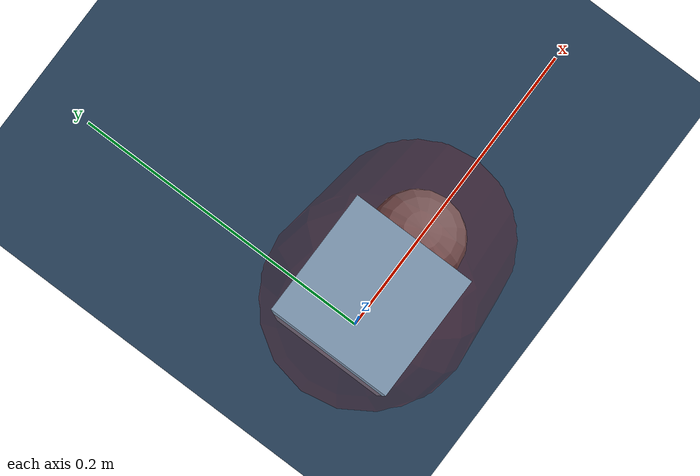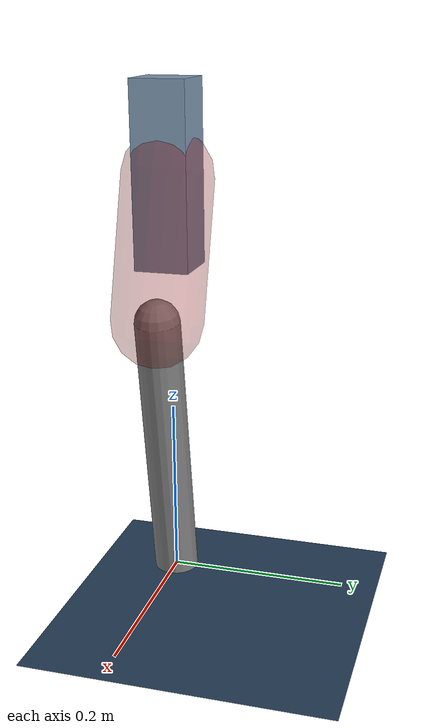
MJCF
<mujoco model="Hopper2D">
	<compiler inertiafromgeom="true" angle="radian" />
	<option timestep="0.001" integrator="implicit" cone="elliptic" solver="Newton" tolerance="1e-10" />

	<default>
		<geom contype="1" conaffinity="1" condim="3" friction="2 0.005 0.0001" solref="0.005 1" />
		<joint limited="true" damping="0.1" />
	</default>

	<asset>
		<texture name="skybox" type="skybox" builtin="gradient" rgb1=".4 .6 .8" rgb2="0 0 0" width="800" height="800" />
		<texture name="grid" type="2d" builtin="checker" rgb1=".1 .2 .3" rgb2=".2 .3 .4" width="300" height="300" mark="edge" markrgb=".2 .3 .4" />
		<material name="ground" texture="grid" texrepeat="1 1" texuniform="true" reflectance="0.1" />
		<material name="leg" rgba="0.5 0.6 0.7 1" />
	</asset>

	<worldbody>

		<geom name="floor" type="plane" size="5 5 0.25" material="ground" />

		<light directional="false" diffuse="0.8 0.8 0.8" specular="0.3 0.3 0.3" pos="0 0 2" dir="0 0 -1" />
		<light mode="targetbodycom" target="base" directional="false" diffuse="0.8 0.8 0.8" specular="0.3 0.3 0.3" pos="0 0 2" dir="0 0 -1" />

		<camera name="fixed" pos="0 -2 1" xyaxes="1 0 0 0 0 1" />
		<camera name="tracking" mode="trackcom" pos="0 -3 1" />

		<body name="root" pos="0 0 0.463946543795397">
			<joint name="slide_x" type="slide" axis="1 0 0" range="-100 100" />
			<joint name="slide_z" type="slide" axis="0 0 1" range="0 10" />

			<body name="base" pos="0 0 0">
				<geom name="torso" type="box" size="0.03 0.03 0.1" mass="1.423" material="leg" />

				<body name="link1" pos="0 0 0" euler="0 1.2767790615029058 0">
					<joint type="hinge" axis="0 -1 0" pos="0 0 0" name="hinge1" limited="true" range="-3.14 3.14" stiffness="0" damping="0.1" />
					<geom name="thigh" type="capsule" fromto="0 0 0 0.1567903160587034 0 0" size="0.05" rgba="0.5 0 0 0.3" mass="0.6245967585408881" />

					<body name="link2" pos="0.1567903160587034 0 0" euler="0 0.4377780670032052 0">
						<joint type="hinge" axis="0 -1 0" pos="0 0 0" name="hinge2" limited="true" range="-3.14 3.14" stiffness="0" damping="0.1" />
						<geom name="shank" type="capsule" fromto="0 0 0 0.31715622773669366 0 0" size="0.025" mass="0.4973249821893549" />

					</body>
				</body>
			</body>
		</body>
	</worldbody>

	<actuator>
		<motor name="torque1" joint="hinge1" ctrlrange="-41.770086477067174 41.770086477067174" ctrllimited="true" gear="1" />
		<motor name="torque2" joint="hinge2" ctrlrange="-14.683465211447238 14.683465211447238" ctrllimited="true" gear="1" />
	</actuator>
</mujoco>
